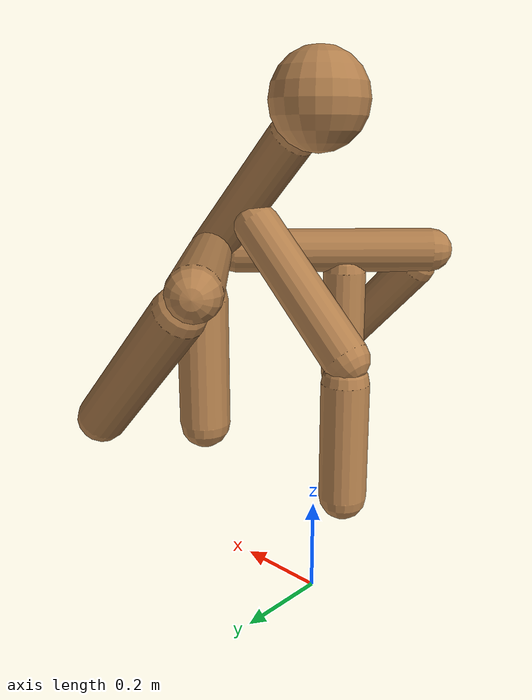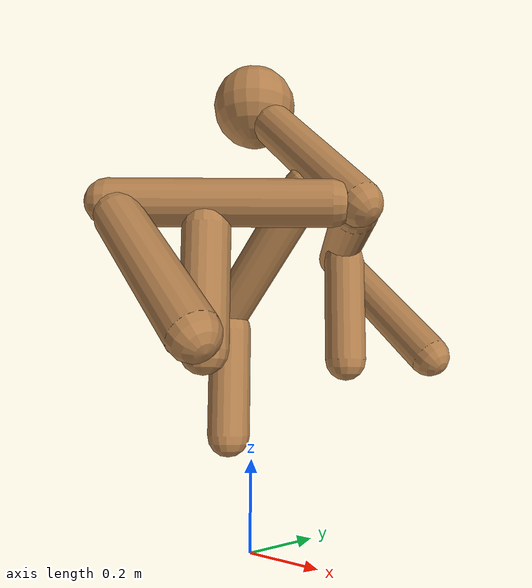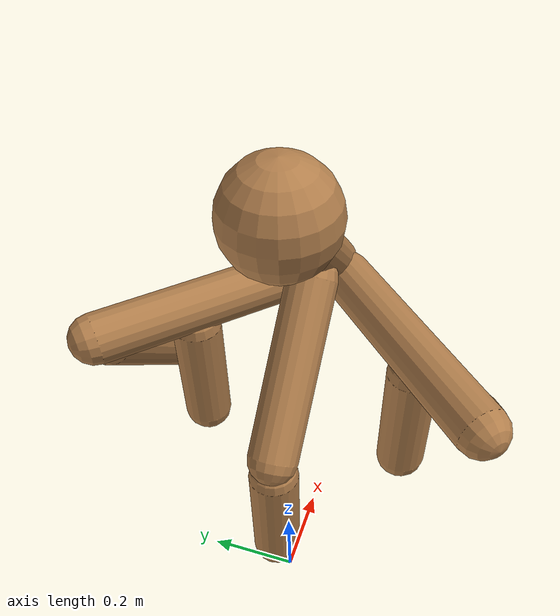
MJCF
<?xml version='1.0' encoding='UTF-8'?>
<!-- Universal Animal Template: unimal -->
<mujoco model="unimal">
  <compiler angle="degree"/>
  <size njmax="2000" nconmax="500"/>
  <option timestep=".005">
    <flag filterparent="disable"/>
  </option>
  <!-- Common defaults to make search space tractable -->
  <default>
    <!-- Define motor defaults -->
    <motor ctrlrange="-1 1" ctrllimited="true"/>
    <!-- Define joint defaults -->
    <default class="normal_joint">
      <joint type="hinge" damping="1" stiffness="1" armature="1" limited="true" range="-120 120" solimplimit="0 0.99 0.01"/>
    </default>
    <default class="walker_joint">
      <joint type="hinge" damping="0.2" stiffness="1" armature=".01" limited="true" range="-120 120" solimplimit="0 0.99 0.01"/>
    </default>
    <default class="stiff_joint">
      <joint type="hinge" damping="5" stiffness="10" armature=".01" limited="true" solimplimit="0 0.99 0.01"/>
    </default>
    <default class="free">
      <joint limited="false" damping="0" armature="0" stiffness="0"/>
    </default>
    <default class="growth_site">
      <site size="1e-6 1e-6 1e-6"/>
    </default>
    <default class="torso_growth_site">
      <site size="1e-6 1e-6 1e-6"/>
    </default>
    <default class="mirror_growth_site">
      <site size="1e-6 1e-6 1e-6"/>
    </default>
    <default class="btm_pos_site">
      <site size="1e-6 1e-6 1e-6"/>
    </default>
    <default class="box_face_site">
      <site size="1e-6 1e-6 1e-6"/>
    </default>
    <default class="imu_vel">
      <site type="box" size="0.05" rgba="1 0 0 0"/>
    </default>
    <default class="touch_site">
      <site group="3" rgba="0 0 1 .3"/>
    </default>
    <default class="food_site">
      <site material="food" size="0.15"/>
    </default>
    <!-- Define geom defaults -->
    <geom type="capsule" condim="3" friction="0.7 0.1 0.1" material="self"/>
  </default>
  <worldbody>
    <light diffuse="1 1 1" directional="true" exponent="1" pos="0 0 8" specular="0.1 0.1 0.1" dir="0 0 -1"/>
    <!-- Programatically generated xml goes here -->
    <body name="torso/0" pos="0 0 1.05">
      <joint name="root" type="free" class="free"/>
      <site name="root" class="imu_vel"/>
      <geom name="torso/0" type="sphere" size="0.1" condim="3" density="600"/>
      <camera name="side" pos="0 -7 2" xyaxes="1 0 0 0 1 2" mode="trackcom"/>
      <site name="torso/0" class="growth_site" pos="0 0 0"/>
      <site name="torso/btm_pos/0" class="btm_pos_site" pos="0 0 -0.1"/>
      <site name="torso/touch/0" class="touch_site" size="0.11"/>
      <site name="torso/horizontal_y/0" class="torso_growth_site" pos="-0.1 0 0"/>
      <body name="limb/0" pos="0.07 0.0 -0.07">
        <joint name="limbx/0" type="hinge" class="normal_joint" range="0 30" pos="-0.04 0.0 0.04" axis="0.7071 0.0 0.7071"/>
        <geom name="limb/0" type="capsule" fromto="0.0 0.0 0.0 0.25 0.0 -0.25" size="0.05" density="1000"/>
        <site name="limb/mid/0" class="growth_site" pos="0.14 0.0 -0.14"/>
        <site name="limb/btm/0" class="growth_site" pos="0.25 0.0 -0.25"/>
        <site name="limb/btm_pos/0" class="btm_pos_site" pos="0.25 0.0 -0.25"/>
        <site name="limb/touch/0" class="touch_site" size="0.060000000000000005" fromto="0.0 0.0 0.0 0.25 0.0 -0.25" type="capsule"/>
        <body name="limb/10" pos="0.1 0.0 -0.18000000000000002">
          <joint name="limbx/10" type="hinge" class="normal_joint" range="0 30" pos="0.04 0.0 0.04" axis="0.7071 0.0 -0.7071"/>
          <geom name="limb/10" type="capsule" fromto="0.0 0.0 0.0 -0.25 0.0 -0.25" size="0.05" density="1000"/>
          <site name="limb/mid/10" class="growth_site" pos="-0.14 0.0 -0.14"/>
          <site name="limb/btm/10" class="growth_site" pos="-0.25 0.0 -0.25"/>
          <site name="limb/btm_pos/10" class="btm_pos_site" pos="-0.25 0.0 -0.25"/>
          <site name="limb/touch/10" class="touch_site" size="0.060000000000000005" fromto="0.0 0.0 0.0 -0.25 0.0 -0.25" type="capsule"/>
          <body name="limb/23" pos="-0.25 0.0 -0.3">
            <joint name="limbx/23" type="hinge" class="normal_joint" range="-45 45" pos="0.0 0.0 0.05" axis="1.0 0.0 0.0"/>
            <geom name="limb/23" type="capsule" fromto="0.0 0.0 0.0 0.0 0.0 -0.25" size="0.05" density="1000"/>
            <site name="limb/mid/23" class="growth_site" pos="0.0 0.0 -0.15"/>
            <site name="limb/btm/23" class="growth_site" pos="0.0 0.0 -0.25"/>
            <site name="limb/btm_pos/23" class="btm_pos_site" pos="0.0 0.0 -0.3"/>
            <site name="limb/touch/23" class="touch_site" size="0.060000000000000005" fromto="0.0 0.0 0.0 0.0 0.0 -0.25" type="capsule"/>
          </body>
        </body>
        <body name="limb/19" pos="0.21 0.04 -0.25">
          <joint name="limbx/19" type="hinge" class="normal_joint" range="-30 0" pos="0.04 -0.04 0.0" axis="0.5 0.5 -0.7071"/>
          <joint name="limby/19" type="hinge" class="normal_joint" range="-45 45" pos="0.04 -0.04 0.0" axis="0.5 0.5 0.7071"/>
          <geom name="limb/19" type="capsule" fromto="0.0 0.0 0.0 -0.32 0.32 0.0" size="0.05" density="1000"/>
          <site name="limb/mid/19" class="mirror_growth_site" pos="-0.18 0.18 0.0"/>
          <site name="limb/btm/19" class="mirror_growth_site" pos="-0.32 0.32 0.0"/>
          <site name="limb/btm_pos/19" class="btm_pos_site" pos="-0.35 0.35 0.0"/>
          <site name="limb/touch/19" class="touch_site" size="0.060000000000000005" fromto="0.0 0.0 0.0 -0.32 0.32 0.0" type="capsule"/>
          <body name="limb/21" pos="-0.18 0.18 -0.05">
            <joint name="limbx/21" type="hinge" class="normal_joint" range="-45 45" pos="0.0 0.0 0.05" axis="1.0 0.0 0.0"/>
            <geom name="limb/21" type="capsule" fromto="0.0 0.0 0.0 0.0 0.0 -0.25" size="0.05" density="1000"/>
            <site name="limb/mid/21" class="mirror_growth_site" pos="0.0 0.0 -0.15"/>
            <site name="limb/btm/21" class="mirror_growth_site" pos="0.0 0.0 -0.25"/>
            <site name="limb/btm_pos/21" class="btm_pos_site" pos="0.0 0.0 -0.25"/>
            <site name="limb/touch/21" class="touch_site" size="0.060000000000000005" fromto="0.0 0.0 0.0 0.0 0.0 -0.25" type="capsule"/>
          </body>
          <body name="limb/24" pos="-0.28 0.32 -0.04">
            <joint name="limbx/24" type="hinge" class="normal_joint" range="-60 60" pos="-0.04 0.0 0.04" axis="0.7071 0.0 0.7071"/>
            <geom name="limb/24" type="capsule" fromto="0.0 0.0 0.0 0.25 0.0 -0.25" size="0.05" density="1000"/>
            <site name="limb/mid/24" class="mirror_growth_site" pos="0.14 0.0 -0.14"/>
            <site name="limb/btm/24" class="mirror_growth_site" pos="0.25 0.0 -0.25"/>
            <site name="limb/btm_pos/24" class="btm_pos_site" pos="0.28 0.0 -0.28"/>
            <site name="limb/touch/24" class="touch_site" size="0.060000000000000005" fromto="0.0 0.0 0.0 0.25 0.0 -0.25" type="capsule"/>
          </body>
        </body>
        <body name="limb/20" pos="0.21 -0.04 -0.25">
          <joint name="limbx/20" type="hinge" class="normal_joint" range="-30 0" pos="0.04 0.04 0.0" axis="0.5 -0.5 -0.7071"/>
          <joint name="limby/20" type="hinge" class="normal_joint" range="-45 45" pos="0.04 0.04 0.0" axis="-0.5 0.5 -0.7071"/>
          <geom name="limb/20" type="capsule" fromto="0.0 0.0 0.0 -0.32 -0.32 0.0" size="0.05" density="1000"/>
          <site name="limb/mid/20" class="mirror_growth_site" pos="-0.18 -0.18 0.0"/>
          <site name="limb/btm/20" class="mirror_growth_site" pos="-0.32 -0.32 0.0"/>
          <site name="limb/btm_pos/20" class="btm_pos_site" pos="-0.35 -0.35 0.0"/>
          <site name="limb/touch/20" class="touch_site" size="0.060000000000000005" fromto="0.0 0.0 0.0 -0.32 -0.32 0.0" type="capsule"/>
          <body name="limb/22" pos="-0.18 -0.18 -0.05">
            <joint name="limbx/22" type="hinge" class="normal_joint" range="-45 45" pos="0.0 0.0 0.05" axis="1.0 0.0 0.0"/>
            <geom name="limb/22" type="capsule" fromto="0.0 0.0 0.0 0.0 0.0 -0.25" size="0.05" density="1000"/>
            <site name="limb/mid/22" class="mirror_growth_site" pos="0.0 0.0 -0.15"/>
            <site name="limb/btm/22" class="mirror_growth_site" pos="0.0 0.0 -0.25"/>
            <site name="limb/btm_pos/22" class="btm_pos_site" pos="0.0 0.0 -0.25"/>
            <site name="limb/touch/22" class="touch_site" size="0.060000000000000005" fromto="0.0 0.0 0.0 0.0 0.0 -0.25" type="capsule"/>
          </body>
          <body name="limb/25" pos="-0.28 -0.32 -0.04">
            <joint name="limbx/25" type="hinge" class="normal_joint" range="-60 60" pos="-0.04 0.0 0.04" axis="0.7071 0.0 0.7071"/>
            <geom name="limb/25" type="capsule" fromto="0.0 0.0 0.0 0.25 0.0 -0.25" size="0.05" density="1000"/>
            <site name="limb/mid/25" class="mirror_growth_site" pos="0.14 0.0 -0.14"/>
            <site name="limb/btm/25" class="mirror_growth_site" pos="0.25 0.0 -0.25"/>
            <site name="limb/btm_pos/25" class="btm_pos_site" pos="0.28 0.0 -0.28"/>
            <site name="limb/touch/25" class="touch_site" size="0.060000000000000005" fromto="0.0 0.0 0.0 0.25 0.0 -0.25" type="capsule"/>
          </body>
        </body>
      </body>
    </body>
  </worldbody>
  <actuator>
    <motor joint="limbx/0" gear="300" name="limbx/0"/>
    <motor joint="limbx/10" gear="200" name="limbx/10"/>
    <motor joint="limbx/23" gear="250" name="limbx/23"/>
    <motor joint="limbx/19" gear="150" name="limbx/19"/>
    <motor joint="limby/19" gear="300" name="limby/19"/>
    <motor joint="limbx/21" gear="250" name="limbx/21"/>
    <motor joint="limbx/24" gear="300" name="limbx/24"/>
    <motor joint="limbx/20" gear="150" name="limbx/20"/>
    <motor joint="limby/20" gear="300" name="limby/20"/>
    <motor joint="limbx/22" gear="250" name="limbx/22"/>
    <motor joint="limbx/25" gear="300" name="limbx/25"/>
  </actuator>
  <sensor>
    <accelerometer name="torso_accel" site="root"/>
    <gyro name="torso_gyro" site="root"/>
    <velocimeter name="torso_vel" site="root"/>
    <subtreeangmom name="unimal_am" body="torso/0"/>
    <touch name="torso/0" site="torso/touch/0"/>
    <touch name="limb/0" site="limb/touch/0"/>
    <touch name="limb/10" site="limb/touch/10"/>
    <touch name="limb/23" site="limb/touch/23"/>
    <touch name="limb/19" site="limb/touch/19"/>
    <touch name="limb/21" site="limb/touch/21"/>
    <touch name="limb/24" site="limb/touch/24"/>
    <touch name="limb/20" site="limb/touch/20"/>
    <touch name="limb/22" site="limb/touch/22"/>
    <touch name="limb/25" site="limb/touch/25"/>
  </sensor>
  <!-- Add hfield assets -->
  <asset/>
  <!-- List of contacts to exclude -->
  <contact>
    <exclude name="limb/19:limb/20" body1="limb/19" body2="limb/20"/>
  </contact>
  <!-- Define material, texture etc -->
  <asset>
    <material name="grid" texture="grid" texrepeat="1 1" texuniform="true" reflectance="0.1"/>
    <material name="hfield" texture="hfield" texrepeat="1 1" texuniform="true" reflectance="0.1"/>
    <material name="wall" texture="wall" texrepeat="1 1" texuniform="true" reflectance=".5"/>
    <material name="platform" texture="platform" texrepeat="1 1" texuniform="true" reflectance=".5"/>
    <material name="boundary" texture="boundary" texrepeat="1 1" texuniform="true" reflectance=".5"/>
    <material name="jump" texture="jump" texrepeat="1 1" texuniform="true" reflectance=".5"/>
    <material name="goal" rgba="1 0 0 1"/>
    <material name="food" rgba="0 0 1 1" emission="1"/>
    <material name="init_position" rgba="0 1 0 0.7"/>
    <material name="self" rgba=".7 .5 .3 1"/>
    <material name="self_invisible" rgba=".7 .5 .3 0"/>
    <material name="self_default" rgba=".7 .5 .3 1"/>
    <material name="self_highlight" rgba="0 .5 .3 1"/>
    <material name="effector" rgba=".7 .4 .2 1"/>
    <material name="effector_default" rgba=".7 .4 .2 1"/>
    <material name="effector_highlight" rgba="0 .5 .3 1"/>
    <material name="decoration" rgba=".3 .5 .7 1"/>
    <material name="eye" rgba="0 .2 1 1"/>
    <material name="target" rgba=".6 .3 .3 1"/>
    <material name="target_default" rgba=".6 .3 .3 1"/>
    <material name="target_highlight" rgba=".6 .3 .3 .4"/>
    <material name="site" rgba=".5 .5 .5 .3"/>
    <material name="ball" texture="ball"/>
  </asset>
  <asset>
    <texture name="grid" type="2d" builtin="checker" rgb1="0.4 0.4 0.4" rgb2="0.4 0.4 0.4" width="300" height="300" mark="edge" markrgb="0.2 0.2 0.2"/>
    <texture name="hfield" type="2d" builtin="checker" rgb1="0.4 0.4 0.4" rgb2="0.4 0.4 0.4" width="300" height="300" mark="edge" markrgb="0.2 0.2 0.2"/>
    <texture name="wall" type="2d" builtin="flat" rgb1="0.9 0.7 0" rgb2="0.9 0.7 0" width="300" height="300"/>
    <texture name="platform" type="2d" builtin="flat" rgb1="0.3 0 0.8" rgb2="0.3 0 0.8" width="300" height="300"/>
    <texture name="boundary" type="2d" builtin="flat" rgb1="0.3 0.3 0.3" rgb2="0.3 0.3 0.3" width="300" height="300"/>
    <texture name="jump" type="2d" builtin="flat" rgb1="0.3 0.3 0.3" rgb2="0.3 0.3 0.3" width="300" height="300"/>
    <texture name="skybox" type="skybox" builtin="gradient" rgb1="1 1 1" rgb2="0.6 0.6 0.6" width="800" height="800"/>
    <texture name="ball" builtin="checker" mark="cross" width="151" height="151" rgb1="0.1 0.1 0.1" rgb2="0.9 0.9 0.9" markrgb="1 1 1"/>
  </asset>
  <visual>
    <headlight ambient="0.6 0.6 0.6" diffuse="0.3 0.3 0.3" specular="0 0 0"/>
    <map znear=".01" shadowclip="0.5"/>
    <quality shadowsize="16384"/>
  </visual>
</mujoco>
